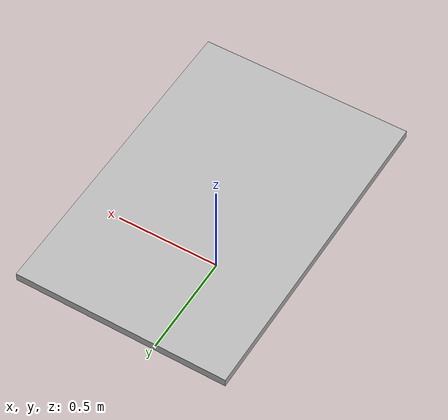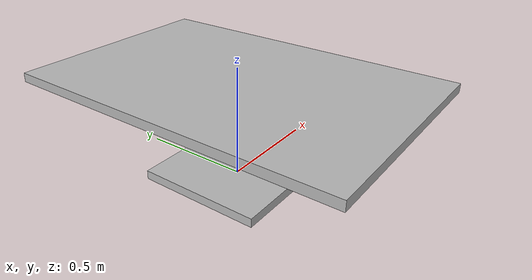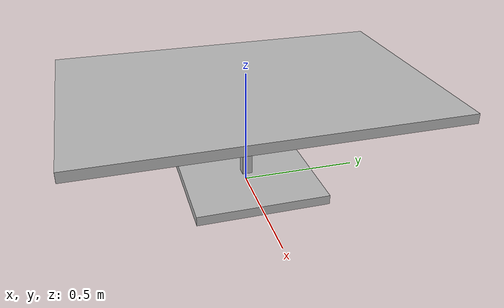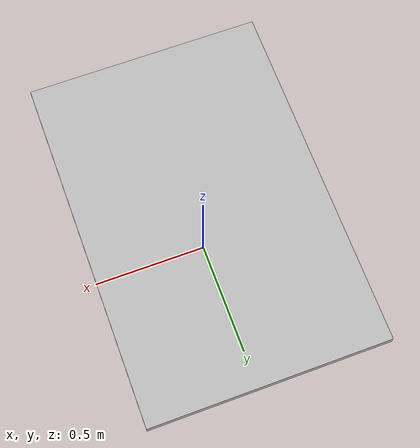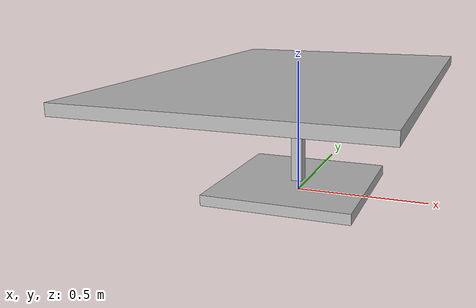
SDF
<?xml version="1.0" ?>
<sdf version="1.4">
  <model name="cafe_table">
    <static>true</static>
    <link name="link">
      <collision name="surface">
        <pose>0 0 0.435 0 0 0</pose>
        <geometry>
          <box>
            <size>1.0 1.5 0.04</size>
          </box>
        </geometry>
      </collision>

      <collision name="column">
        <pose>0 0 0.21 0 0 0</pose>
        <geometry>
          <box>
            <size>0.042 0.042 0.42</size>
          </box>
        </geometry>
      </collision>

      <collision name="base">
        <pose>0 0 0.02 0 0 0</pose>
        <geometry>
          <box>
            <size>0.56 0.56 0.04</size>
          </box>
        </geometry>
      </collision>

     <visual name="surface">
      <pose>0 0 0.435 0 0 0</pose>
        <geometry>
          <box>
            <size>1.0 1.5 0.04</size>
          </box>
        </geometry>
    </visual>

    <visual name="column">
      <pose>0 0 0.21 0 0 0</pose>
        <geometry>
          <box>
            <size>0.042 0.042 0.42</size>
          </box>
        </geometry>
    </visual>

    <visual name="base">
      <pose>0 0 0.02 0 0 0</pose>
        <geometry>
          <box>
            <size>0.56 0.56 0.04</size>
          </box>
        </geometry>
  </visual>

    </link>
  </model>
</sdf>
